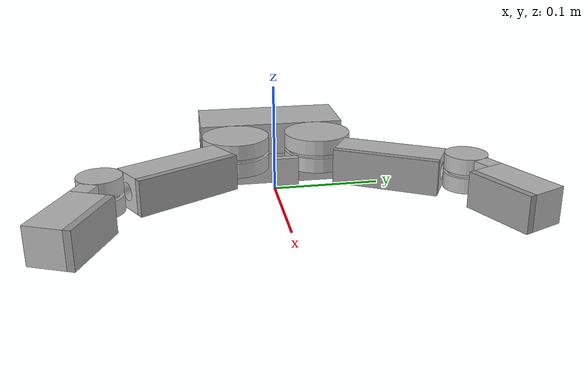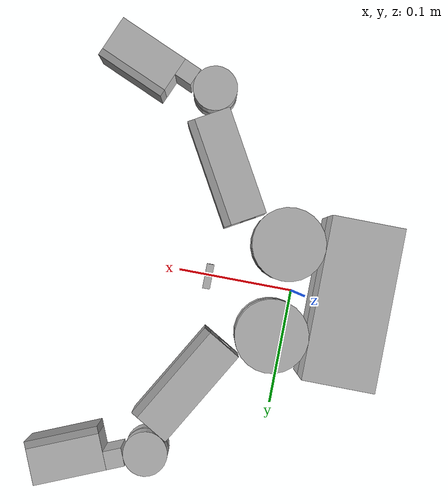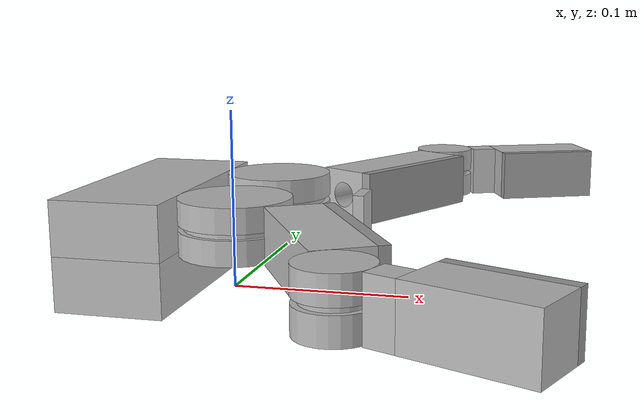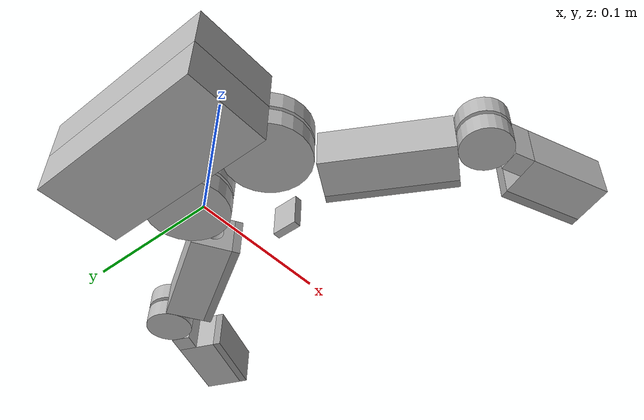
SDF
<?xml version="1.0" ?>
<sdf version="1.7">
<model name="gripper_model">
  <link name="base">
    <pose>-0.045 0.0 0.015 0 0 0</pose>
    <inertial>
      <inertia>
        <ixx>3.0466176e-05</ixx>
        <ixy>0</ixy>
        <ixz>0</ixz>
        <iyy>3.0466176e-05</iyy>
        <iyz>0</iyz>
        <izz>3.0466176e-05</izz>
      </inertia>
      <mass>0.02</mass>
    </inertial>
    <collision name="collision">
      <pose>0 0 0 0 0 0</pose>
      <geometry>
        <box>
          <size>0.06 0.135 0.03</size>
        </box>
      </geometry>
    </collision>
    <visual name="visual">
      <geometry>
        <box>
          <size>0.06 0.135 0.03</size>
        </box>
      </geometry>
    </visual>
  </link>
  <link name="riser">
    <pose>-0.045 0.0 0.045 0 0 0</pose>
    <inertial>
      <inertia>
        <ixx>3.0466176e-05</ixx>
        <ixy>0</ixy>
        <ixz>0</ixz>
        <iyy>3.0466176e-05</iyy>
        <iyz>0</iyz>
        <izz>3.0466176e-05</izz>
      </inertia>
      <mass>0.02</mass>
    </inertial>
    <collision name="collisiontop">
      <pose>0 0 0.00825 1.57 0 0</pose>
      <geometry>
        <box>
          <size>0.06 0.0135 0.018</size>
        </box>
      </geometry>
    </collision>
    <collision name="collisionbottom">
      <pose>0 0 -0.00825 1.57 0 0</pose>
      <geometry>
        <box>
          <size>0.06 0.0135 0.018</size>
        </box>
      </geometry>
    </collision>
    <collision name="collisionleft">
      <pose>0 0.0195 0 1.57 0 0</pose>
      <geometry>
        <box>
          <size>0.06 0.03 0.021</size>
        </box>
      </geometry>
    </collision>
    <collision name="collisionright">
      <pose>0 -0.0195 0 1.57 0 0</pose>
      <geometry>
        <box>
          <size>0.06 0.03 0.021</size>
        </box>
      </geometry>
    </collision>
    <collision name="collisionmiddle">
      <pose>0 0 0 1.57 0 0</pose>
      <geometry>
        <box>
          <size>0.06 0.003 0.012</size>
        </box>
      </geometry>
    </collision>
    <visual name="visual">
      <geometry>
        <box>
          <size>0.06 0.135 0.03</size>
        </box>
      </geometry>
    </visual>
    <self_collide>1</self_collide>
  </link>
  <link name="palm">
    <pose>0.064 0.0 0.045 0 0 0</pose>
    <inertial>
      <inertia>
        <ixx>3.0466176e-05</ixx>
        <ixy>0</ixy>
        <ixz>0</ixz>
        <iyy>3.0466176e-05</iyy>
        <iyz>0</iyz>
        <izz>3.0466176e-05</izz>
      </inertia>
      <mass>0.015</mass>
    </inertial>
    <collision name="collision">
      <pose>0.010 0 0 0 0 0</pose>
      <geometry>
        <box>
          <size>0.006 0.02 0.025</size>
        </box>
      </geometry>
    </collision>
    <visual name="visual">
      <pose>0.010 0 0 0 0 0</pose>
      <geometry>
        <box>
          <size>0.006 0.02 0.025</size>
        </box>
      </geometry>
    </visual>
    <self_collide>1</self_collide>
    <sensor name='contact_sensor' type='contact'>
      <update_rate>20</update_rate>
      <contact>
        <collision>collision</collision>
      </contact>
      <plugin name="contact_plugin" filename="/opt/ros/noetic/lib/libgazebo_ros_bumper.so">
        <bumperTopicName>contactsensor</bumperTopicName>
        <frameName>world</frameName>
      </plugin>
    </sensor>
  </link>
  <joint name="fix_palm" type="fixed">
    <child>palm</child>
    <parent>riser</parent>
  </joint>
  <link name="left_finger_link">
    <pose relative_to="riser">0.06 0.0375 0 0 0 -0.52359</pose>
    <inertial>
      <inertia>
        <ixx>3.0466176e-05</ixx>
        <ixy>0</ixy>
        <ixz>0</ixz>
        <iyy>3.0466176e-05</iyy>
        <iyz>0</iyz>
        <izz>3.0466176e-05</izz>
      </inertia>
      <mass>0.015</mass>
    </inertial>
    <collision name="collisiontop">
      <pose>0 0 0.00825 0 0 0</pose>
      <geometry>
        <cylinder>
          <radius>0.03</radius>
          <length>0.0135</length>
        </cylinder>
      </geometry>
    </collision>
    <collision name="collisionmiddle">
      <geometry>
        <cylinder>
          <radius>0.027</radius>
          <length>0.003</length>
        </cylinder>
      </geometry>
    </collision>
    <collision name="collisionbottom">
      <pose>0 0 -0.00825 0 0 0</pose>
      <geometry>
        <cylinder>
          <radius>0.03</radius>
          <length>0.0135</length>
        </cylinder>
      </geometry>
    </collision>
    <visual name="visualtop">
      <pose>0 0 0.00825 0 0 0</pose>
      <geometry>
        <cylinder>
          <radius>0.03</radius>
          <length>0.0135</length>
        </cylinder>
      </geometry>
    </visual>
    <visual name="visualmiddle">
      <geometry>
        <cylinder>
          <radius>0.027</radius>
          <length>0.003</length>
        </cylinder>
      </geometry>
    </visual>
    <visual name="visualbottom">
      <pose>0 0 -0.00825 0 0 0</pose>
      <geometry>
        <cylinder>
          <radius>0.03</radius>
          <length>0.0135</length>
        </cylinder>
      </geometry>
    </visual>
    <self_collide>1</self_collide>
  </link>
  <link name="left_finger">
    <pose relative_to="left_finger_link">0.024 0.075 0 0 0 0</pose>
    <inertial>
      <inertia>
        <ixx>3.0466176e-05</ixx>
        <ixy>0</ixy>
        <ixz>0</ixz>
        <iyy>3.0466176e-05</iyy>
        <iyz>0</iyz>
        <izz>3.0466176e-05</izz>
      </inertia>
      <mass>0.015</mass>
    </inertial>
    <collision name="collisionleft">
      <pose>0.01125 0 0 1.57 0 0</pose>
      <geometry>
        <box>
          <size>0.0075 0.03 0.09</size>
        </box>
      </geometry>
    </collision>
    <collision name="collisionright">
      <pose>-0.01125 0 0 1.57 0 0</pose>
      <geometry>
        <box>
          <size>0.0075 0.03 0.09</size>
        </box>
      </geometry>
    </collision>
    <collision name="collisiontop">
      <pose>0 0 0.00825 1.57 0 0</pose>
      <geometry>
        <box>
          <size>0.015 0.0135 0.09</size>
        </box>
      </geometry>
    </collision>
    <collision name="collisionbottom">
      <pose>0 0 -0.00825 1.57 0 0</pose>
      <geometry>
        <box>
          <size>0.015 0.0135 0.09</size>
        </box>
      </geometry>
    </collision>
    <visual name="visual">
      <pose>0 0 0 1.57 0 0</pose>
      <geometry>
        <mesh>
          <scale>0.3 0.3 0.3</scale>
          <uri>model://gripper_model/meshes/gripper_finger.stl</uri>
        </mesh>
      </geometry>
    </visual>
    <self_collide>1</self_collide>
  </link>
  <link name="soft_left_finger_pad">
    <pose relative_to="left_finger">0.018 0 0 1.5708 0 1.5708</pose>
    <inertial>
      <pose>0 0 0 0 0 0</pose>
      <inertia>
        <ixx>3.046617599999999e-06</ixx>
        <ixy>0</ixy>
        <ixz>0</ixz>
        <iyy>3.046617599999999e-06</iyy>
        <iyz>0</iyz>
        <izz>3.046617599999999e-06</izz>
      </inertia>
      <mass>0.003</mass>
    </inertial>
    <collision name="collision">
      <geometry>
        <box>
          <size>0.09 0.03 0.006</size>
        </box>
      </geometry>
      <surface>
        <contact>
          <ode>
            <soft_erp>0.2</soft_erp>
            <kp>1400</kp>
            <kd>0.5</kd>
            <max_vel>0.2</max_vel>
            <min_depth>0.05</min_depth>
          </ode>
        </contact>
        <friction>
          <ode>
            <mu>5.0</mu>
            <mu2>5.0</mu2>
          </ode>
        </friction>
      </surface>
    </collision>
    <visual name="visual">
      <geometry>
        <box>
          <size>0.09 0.03 0.006</size>
        </box>
      </geometry>
      <material>
        <script>
          <name>Gazebo/Gray</name>
          <uri>file://media/materials/scripts/gazebo.material</uri>
        </script>
      </material>
    </visual>
  </link>
  <link name="left_finger_tip_link">
    <pose relative_to="left_finger">-0.009 0.063 0 0 0 -0.645772</pose>
    <inertial>
      <inertia>
        <ixx>3.0466176e-05</ixx>
        <ixy>0</ixy>
        <ixz>0</ixz>
        <iyy>3.0466176e-05</iyy>
        <iyz>0</iyz>
        <izz>3.0466176e-05</izz>
      </inertia>
      <mass>0.015</mass>
    </inertial>
    <collision name="collisiontop">
      <pose>0 0 0.00825 0 0 0</pose>
      <geometry>
        <cylinder>
          <radius>0.018</radius>
          <length>0.0135</length>
        </cylinder>
      </geometry>
    </collision>
    <collision name="collisionmiddle">
      <geometry>
        <cylinder>
          <radius>0.015</radius>
          <length>0.003</length>
        </cylinder>
      </geometry>
    </collision>
    <collision name="collisionbottom">
      <pose>0 0 -0.00825 0 0 0</pose>
      <geometry>
        <cylinder>
          <radius>0.018</radius>
          <length>0.0135</length>
        </cylinder>
      </geometry>
    </collision>
    <visual name="visualtop">
      <pose>0 0 0.00825 0 0 0</pose>
      <geometry>
        <cylinder>
          <radius>0.018</radius>
          <length>0.0135</length>
        </cylinder>
      </geometry>
    </visual>
    <visual name="visualmiddle">
      <geometry>
        <cylinder>
          <radius>0.015</radius>
          <length>0.003</length>
        </cylinder>
      </geometry>
    </visual>
    <visual name="visualbottom">
      <pose>0 0 -0.00825 0 0 0</pose>
      <geometry>
        <cylinder>
          <radius>0.018</radius>
          <length>0.0135</length>
        </cylinder>
      </geometry>
    </visual>
  </link>
  <link name="left_finger_tip_spacer">
    <pose relative_to="left_finger_tip_link">0.0015 0.025500000000000002 0 0 0 0</pose>
    <inertial>
      <inertia>
        <ixx>3.046617599999999e-06</ixx>
        <ixy>0</ixy>
        <ixz>0</ixz>
        <iyy>3.046617599999999e-06</iyy>
        <iyz>0</iyz>
        <izz>3.046617599999999e-06</izz>
      </inertia>
      <mass>0.003</mass>
    </inertial>
    <collision name="collision">
      <geometry>
        <box>
          <size>0.015 0.015 0.03</size>
        </box>
      </geometry>
    </collision>
    <visual name="visual">
      <geometry>
        <box>
          <size>0.015 0.015 0.03</size>
        </box>
      </geometry>
    </visual>
  </link>
  <link name="left_finger_tip">
    <pose relative_to="left_finger_tip_link">0.009 0.063 0 0 0 0</pose>
    <inertial>
      <inertia>
        <ixx>3.0466176e-05</ixx>
        <ixy>0</ixy>
        <ixz>0</ixz>
        <iyy>3.0466176e-05</iyy>
        <iyz>0</iyz>
        <izz>3.0466176e-05</izz>
      </inertia>
      <mass>0.015</mass>
    </inertial>
    <collision name="collision">
      <geometry>
        <box>
          <size>0.03 0.06 0.03</size>
        </box>
      </geometry>
    </collision>
    <visual name="visual">
      <geometry>
        <box>
          <size>0.03 0.06 0.03</size>
        </box>
      </geometry>
    </visual>
    <self_collide>1</self_collide>
  </link>
  <link name="soft_left_fingertip_pad">
    <pose relative_to="left_finger_tip">0.018 0 0 1.5708 0 1.5708</pose>
    <inertial>
      <pose>0 0 0 0 0 0</pose>
      <inertia>
        <ixx>3.046617599999999e-06</ixx>
        <ixy>0</ixy>
        <ixz>0</ixz>
        <iyy>3.046617599999999e-06</iyy>
        <iyz>0</iyz>
        <izz>3.046617599999999e-06</izz>
      </inertia>
      <mass>0.003</mass>
    </inertial>
    <collision name="collision">
      <geometry>
        <box>
          <size>0.06 0.03 0.006</size>
        </box>
      </geometry>
      <surface>
        <contact>
          <ode>
            <soft_cfm>0.5</soft_cfm>
            <soft_erp>0.2</soft_erp>
            <kp>1400</kp>
            <kd>0.5</kd>
            <max_vel>0.2</max_vel>
            <min_depth>0.05</min_depth>
          </ode>
        </contact>
        <friction>
          <ode>
            <mu>5.0</mu>
            <mu2>5.0</mu2>
          </ode>
        </friction>
      </surface>
    </collision>
    <visual name="visual">
      <geometry>
        <box>
          <size>0.06 0.03 0.006</size>
        </box>
      </geometry>
      <material>
        <script>
          <name>Gazebo/Gray</name>
          <uri>file://media/materials/scripts/gazebo.material</uri>
        </script>
      </material>
    </visual>
  </link>
  <link name="right_finger_link">
    <pose relative_to="riser">0.06 -0.0375 0 0 0 0.52359</pose>
    <inertial>
      <inertia>
        <ixx>3.0466176e-05</ixx>
        <ixy>0</ixy>
        <ixz>0</ixz>
        <iyy>3.0466176e-05</iyy>
        <iyz>0</iyz>
        <izz>3.0466176e-05</izz>
      </inertia>
      <mass>0.015</mass>
    </inertial>
    <collision name="collisiontop">
      <pose>0 0 0.00825 0 0 0 </pose>
      <geometry>
        <cylinder>
          <radius>0.03</radius>
          <length>0.0135</length>
        </cylinder>
      </geometry>
    </collision>
    <collision name="collisionmiddle">
      <geometry>
        <cylinder>
          <radius>0.027</radius>
          <length>0.003</length>
        </cylinder>
      </geometry>
    </collision>
    <collision name="collisionbottom">
      <pose>0 0 -0.00825 0 0 0 </pose>
      <geometry>
        <cylinder>
          <radius>0.03</radius>
          <length>0.0135</length>
        </cylinder>
      </geometry>
    </collision>
    <visual name="visualtop">
      <pose>0 0 0.00825 0 0 0 </pose>
      <geometry>
        <cylinder>
          <radius>0.03</radius>
          <length>0.0135</length>
        </cylinder>
      </geometry>
    </visual>
    <visual name="visualmiddle">
      <geometry>
        <cylinder>
          <radius>0.027</radius>
          <length>0.003</length>
        </cylinder>
      </geometry>
    </visual>
    <visual name="visualbottom">
      <pose>0 0 -0.00825 0 0 0 </pose>
      <geometry>
        <cylinder>
          <radius>0.03</radius>
          <length>0.0135</length>
        </cylinder>
      </geometry>
    </visual>
    <self_collide>1</self_collide>
  </link>
  <link name="right_finger">
    <pose relative_to="right_finger_link">0.024 -0.075 0 0 0 0</pose>
    <inertial>
      <inertia>
        <ixx>3.0466176e-05</ixx>
        <ixy>0</ixy>
        <ixz>0</ixz>
        <iyy>3.0466176e-05</iyy>
        <iyz>0</iyz>
        <izz>3.0466176e-05</izz>
      </inertia>
      <mass>0.015</mass>
    </inertial>
    <collision name="collisionleft">
      <pose>0.01125 0 0 1.57 0 0</pose>
      <geometry>
        <box>
          <size>0.0075 0.03 0.09</size>
        </box>
      </geometry>
    </collision>
    <collision name="collisionright">
      <pose>-0.01125 0 0 1.57 0 0</pose>
      <geometry>
        <box>
          <size>0.0075 0.03 0.09</size>
        </box>
      </geometry>
    </collision>
    <collision name="collisiontop">
      <pose>0 0 0.00825 1.57 0 0</pose>
      <geometry>
        <box>
          <size>0.015 0.0135 0.09</size>
        </box>
      </geometry>
    </collision>
    <collision name="collisionbottom">
      <pose>0 0 -0.00825 1.57 0 0</pose>
      <geometry>
        <box>
          <size>0.015 0.0135 0.09</size>
        </box>
      </geometry>
    </collision>
    <visual name="visual">
      <pose>0 0 0 1.57 0 0</pose>
      <geometry>
        <mesh>
          <scale>0.3 0.3 0.3</scale>
          <uri>model://gripper_model/meshes/gripper_finger.stl</uri>
        </mesh>
      </geometry>
    </visual>
    <self_collide>1</self_collide>
  </link>
  <link name="soft_right_finger_pad">
    <pose relative_to="right_finger">0.018 0 0 1.5708 0 1.5708</pose>
    <inertial>
      <pose>0 0 0 0 0 0</pose>
      <inertia>
        <ixx>3.046617599999999e-06</ixx>
        <ixy>0</ixy>
        <ixz>0</ixz>
        <iyy>3.046617599999999e-06</iyy>
        <iyz>0</iyz>
        <izz>3.046617599999999e-06</izz>
      </inertia>
      <mass>0.003</mass>
    </inertial>
    <collision name="collision">
      <geometry>
        <box>
          <size>0.09 0.03 0.006</size>
        </box>
      </geometry>
      <surface>
        <contact>
          <ode>
            <soft_cfm>0.5</soft_cfm>
            <soft_erp>0.2</soft_erp>
            <kp>1400</kp>
            <kd>0.5</kd>
            <max_vel>0.2</max_vel>
            <min_depth>0.05</min_depth>
          </ode>
        </contact>
        <friction>
          <ode>
            <mu>5.0</mu>
            <mu2>5.0</mu2>
          </ode>
        </friction>
      </surface>
    </collision>
    <visual name="visual">
      <geometry>
        <box>
          <size>0.09 0.03 0.006</size>
        </box>
      </geometry>
      <material>
        <script>
          <name>Gazebo/Gray</name>
          <uri>file://media/materials/scripts/gazebo.material</uri>
        </script>
      </material>
    </visual>
  </link>
  <link name="right_finger_tip_link">
    <pose relative_to="right_finger">-0.009 -0.063 0 0 0 0.645772</pose>
    <inertial>
      <inertia>
        <ixx>3.0466176e-05</ixx>
        <ixy>0</ixy>
        <ixz>0</ixz>
        <iyy>3.0466176e-05</iyy>
        <iyz>0</iyz>
        <izz>3.0466176e-05</izz>
      </inertia>
      <mass>0.015</mass>
    </inertial>
    <collision name="collisiontop">
      <pose>0 0 0.00825 0 0 0 </pose>
      <geometry>
        <cylinder>
          <radius>0.018</radius>
          <length>0.0135</length>
        </cylinder>
      </geometry>
    </collision>
    <collision name="collisionmiddle">
      <geometry>
        <cylinder>
          <radius>0.015</radius>
          <length>0.003</length>
        </cylinder>
      </geometry>
    </collision>
    <collision name="collisionbottom">
      <pose>0 0 -0.00825 0 0 0 </pose>
      <geometry>
        <cylinder>
          <radius>0.018</radius>
          <length>0.0135</length>
        </cylinder>
      </geometry>
    </collision>
    <visual name="visualtop">
      <pose>0 0 0.00825 0 0 0 </pose>
      <geometry>
        <cylinder>
          <radius>0.018</radius>
          <length>0.0135</length>
        </cylinder>
      </geometry>
    </visual>
    <visual name="visualmiddle">
      <geometry>
        <cylinder>
          <radius>0.015</radius>
          <length>0.003</length>
        </cylinder>
      </geometry>
    </visual>
    <visual name="visualbottom">
      <pose>0 0 -0.00825 0 0 0 </pose>
      <geometry>
        <cylinder>
          <radius>0.018</radius>
          <length>0.0135</length>
        </cylinder>
      </geometry>
    </visual>
  </link>
  <link name="right_finger_tip_spacer">
    <pose relative_to="right_finger_tip_link">0.0015 -0.025500000000000002 0 0 0 0</pose>
    <inertial>
      <inertia>
        <ixx>3.046617599999999e-06</ixx>
        <ixy>0</ixy>
        <ixz>0</ixz>
        <iyy>3.046617599999999e-06</iyy>
        <iyz>0</iyz>
        <izz>3.046617599999999e-06</izz>
      </inertia>
      <mass>0.003</mass>
    </inertial>
    <collision name="collision">
      <geometry>
        <box>
          <size>0.015 0.015 0.03</size>
        </box>
      </geometry>
    </collision>
    <visual name="visual">
      <geometry>
        <box>
          <size>0.015 0.015 0.03</size>
        </box>
      </geometry>
    </visual>
  </link>
  <link name="right_finger_tip">
    <pose relative_to="right_finger_tip_link">0.009 -0.063 0 0 0 0</pose>
    <inertial>
      <inertia>
        <ixx>3.0466176e-05</ixx>
        <ixy>0</ixy>
        <ixz>0</ixz>
        <iyy>3.0466176e-05</iyy>
        <iyz>0</iyz>
        <izz>3.0466176e-05</izz>
      </inertia>
      <mass>0.015</mass>
    </inertial>
    <collision name="collision">
      <geometry>
        <box>
          <size>0.03 0.06 0.03</size>
        </box>
      </geometry>
    </collision>
    <visual name="visual">
      <geometry>
        <box>
          <size>0.03 0.06 0.03</size>
        </box>
      </geometry>
    </visual>
    <self_collide>1</self_collide>
  </link>
  <link name="soft_right_fingertip_pad">
    <pose relative_to="right_finger_tip">0.018 0 0 1.5708 0 1.5708</pose>
    <inertial>
      <pose>0 0 0 0 0 0</pose>
      <inertia>
        <ixx>3.046617599999999e-06</ixx>
        <ixy>0</ixy>
        <ixz>0</ixz>
        <iyy>3.046617599999999e-06</iyy>
        <iyz>0</iyz>
        <izz>3.046617599999999e-06</izz>
      </inertia>
      <mass>0.003</mass>
    </inertial>
    <collision name="collision">
      <geometry>
        <box>
          <size>0.06 0.03 0.006</size>
        </box>
      </geometry>
      <surface>
        <contact>
          <ode>
            <soft_cfm>0.5</soft_cfm>
            <soft_erp>0.2</soft_erp>
            <kp>1400</kp>
            <kd>0.5</kd>
            <max_vel>0.2</max_vel>
            <min_depth>0.05</min_depth>
          </ode>
        </contact>
        <friction>
          <ode>
            <mu>5.0</mu>
            <mu2>5.0</mu2>
          </ode>
        </friction>
      </surface>
    </collision>
    <visual name="visual">
      <geometry>
        <box>
          <size>0.06 0.03 0.006</size>
        </box>
      </geometry>
      <material>
        <script>
          <name>Gazebo/Gray</name>
          <uri>file://media/materials/scripts/gazebo.material</uri>
        </script>
      </material>
    </visual>
  </link>
  <static>false</static>
  <!-- JOINTS -->
  <joint name="base_riser" type="fixed">
    <child>riser</child>
    <parent>base</parent>
  </joint>
  <joint name="riser_left_finger_link" type="revolute">
    <child>left_finger_link</child>
    <parent>riser</parent>
    <axis>
      <limit>
        <lower>-0.95</lower>
        <upper>0.28</upper>
      </limit>
      <xyz>0 0 1</xyz>
      <dynamics>
        <spring_reference>0</spring_reference>
        <spring_stiffness>0.09</spring_stiffness>
        <damping>0.1</damping>
      </dynamics>
    </axis>
    <sensor name="force_torque1" type="force_torque">
      <update_rate>30</update_rate>
      <force_torque>
        <frame>child</frame>
        <measure_direction>child_to_parent</measure_direction>
      </force_torque>
    </sensor>
  </joint>
  <joint name="fix_left_finger_link" type="fixed">
    <child>left_finger</child>
    <parent>left_finger_link</parent>
  </joint>
  <joint name="joint_left_finger_tip_link" type="revolute">
    <child>left_finger_tip_link</child>
    <parent>left_finger</parent>
    <axis>
      <limit>
        <lower>-0.90</lower>
        <upper>0.17</upper>
      </limit>
      <xyz>0 0 1</xyz>
      <dynamics>
        <spring_reference>0</spring_reference>
        <spring_stiffness>0.09</spring_stiffness>
        <damping>0.1</damping>
      </dynamics>
    </axis>
    <sensor name="force_torque2" type="force_torque">
      <update_rate>30</update_rate>
      <force_torque>
        <frame>child</frame>
        <measure_direction>child_to_parent</measure_direction>
      </force_torque>
    </sensor>
  </joint>
  <joint name="fix_left_finger_tip_link" type="fixed">
    <child>left_finger_tip</child>
    <parent>left_finger_tip_link</parent>
  </joint>
  <joint name="fix_left_finger_tip_spacer" type="fixed">
    <child>left_finger_tip</child>
    <parent>left_finger_tip_spacer</parent>
  </joint>
  <joint name="riser_right_finger_link" type="revolute">
    <child>right_finger_link</child>
    <parent>riser</parent>
    <axis>
      <limit>
        <lower>-0.28</lower>
        <upper>0.95</upper>
      </limit>
      <xyz>0 0 1</xyz>
      <dynamics>
        <spring_reference>0</spring_reference>
        <spring_stiffness>0.09</spring_stiffness>
        <damping>0.1</damping>
      </dynamics>
    </axis>
    <sensor name="force_torque3" type="force_torque">
      <update_rate>30</update_rate>
      <force_torque>
        <frame>child</frame>
        <measure_direction>child_to_parent</measure_direction>
      </force_torque>
    </sensor>
  </joint>
  <joint name="fix_right_finger_link" type="fixed">
    <child>right_finger</child>
    <parent>right_finger_link</parent>
  </joint>
  <joint name="joint_right_finger_tip_link" type="revolute">
    <child>right_finger_tip_link</child>
    <parent>right_finger</parent>
    <axis>
      <limit>
        <lower>-0.17</lower>
        <upper>0.90</upper>
      </limit>
      <xyz>0 0 1</xyz>
      <dynamics>
        <spring_reference>0</spring_reference>
        <spring_stiffness>0.09</spring_stiffness>
        <damping>0.1</damping>
      </dynamics>
    </axis>
    <sensor name="force_torque4" type="force_torque">
      <update_rate>30</update_rate>
      <force_torque>
        <frame>child</frame>
        <measure_direction>child_to_parent</measure_direction>
      </force_torque>
    </sensor>
  </joint>
  <joint name="fix_right_finger_tip_link" type="fixed">
    <child>right_finger_tip</child>
    <parent>right_finger_tip_link</parent>
  </joint>
  <joint name="fix_right_finger_tip_spacer" type="fixed">
    <child>right_finger_tip</child>
    <parent>right_finger_tip_spacer</parent>
  </joint>
  <!-- pad joints -->
  <joint name="soft_left_finger_pad_joint" type="fixed">
    <child>soft_left_finger_pad</child>
    <parent>left_finger</parent>
  </joint>
  <joint name="soft_left_fingertip_pad_joint" type="fixed">
    <child>soft_left_fingertip_pad</child>
    <parent>left_finger_tip</parent>
  </joint>
  <joint name="soft_right_finger_pad_joint" type="fixed">
    <child>soft_right_finger_pad</child>
    <parent>right_finger</parent>
  </joint>
  <joint name="soft_right_fingertip_pad_joint" type="fixed">
    <child>soft_right_fingertip_pad</child>
    <parent>right_finger_tip</parent>
  </joint>
</model>
</sdf>
